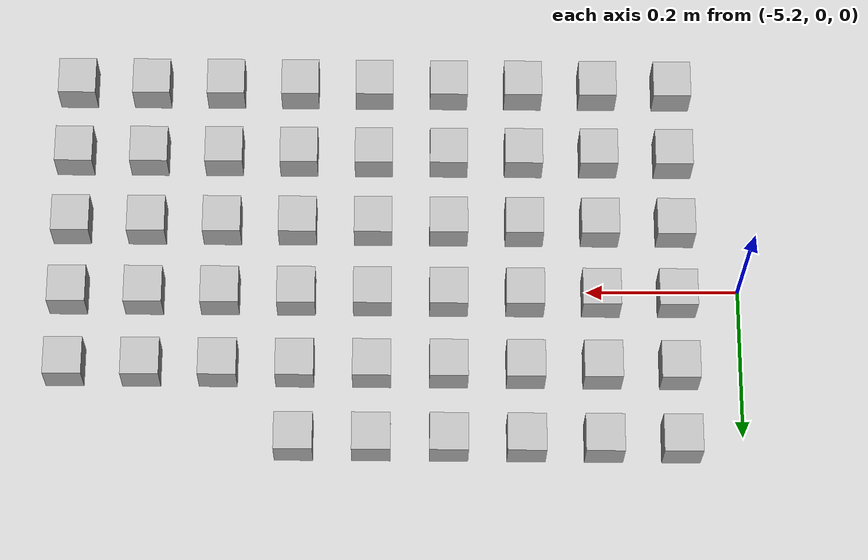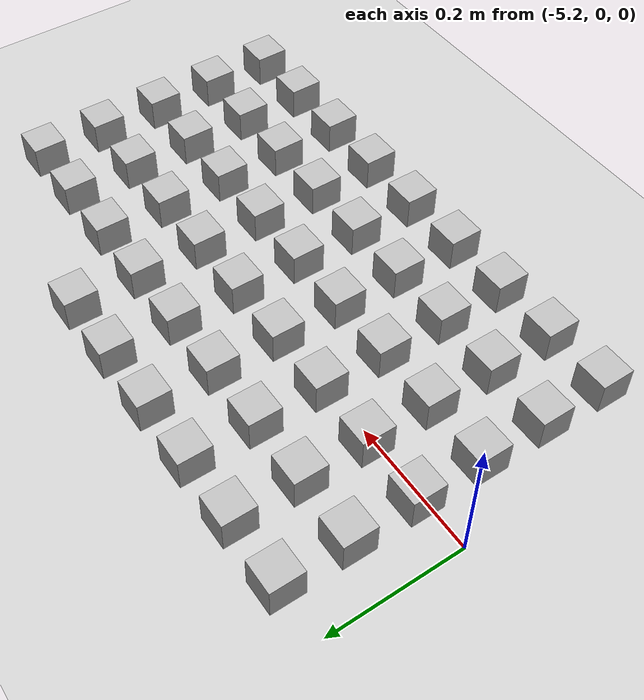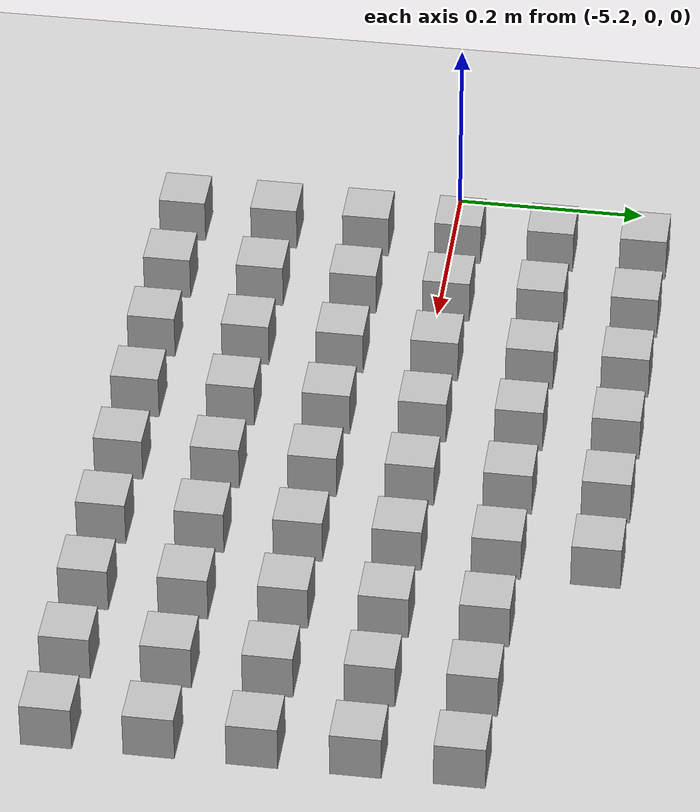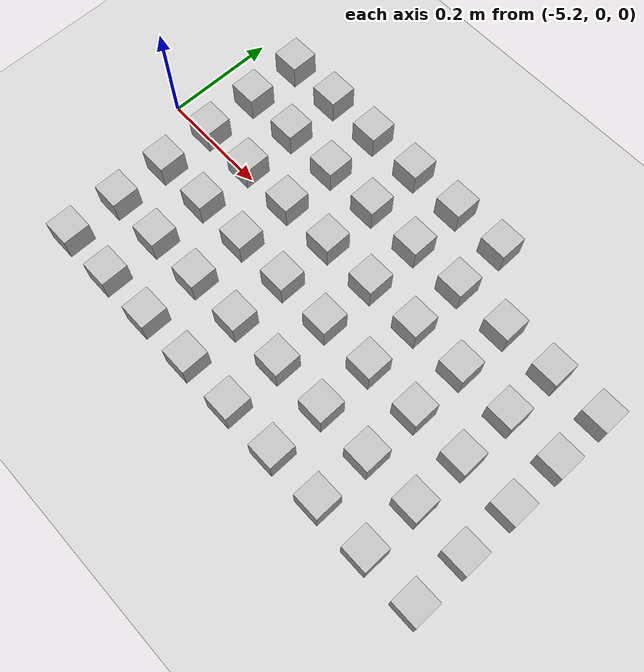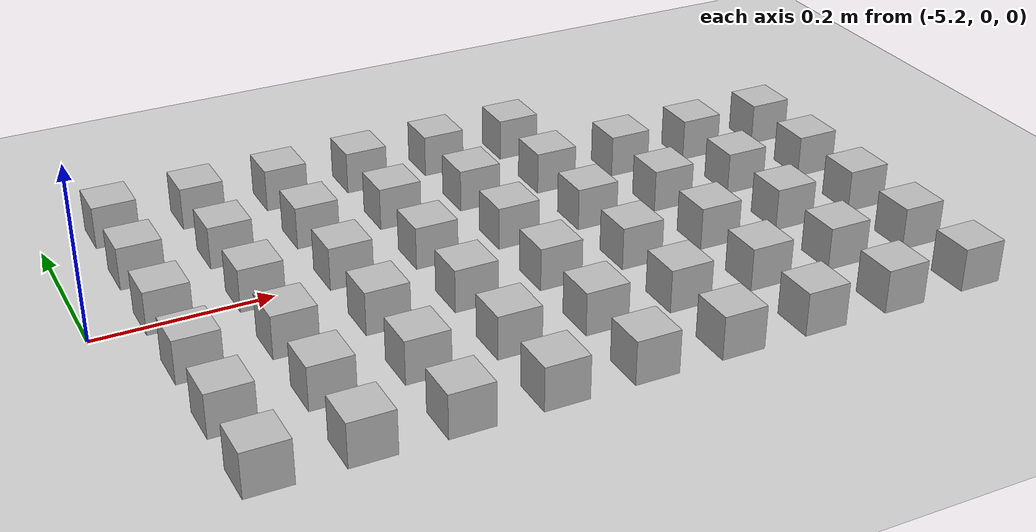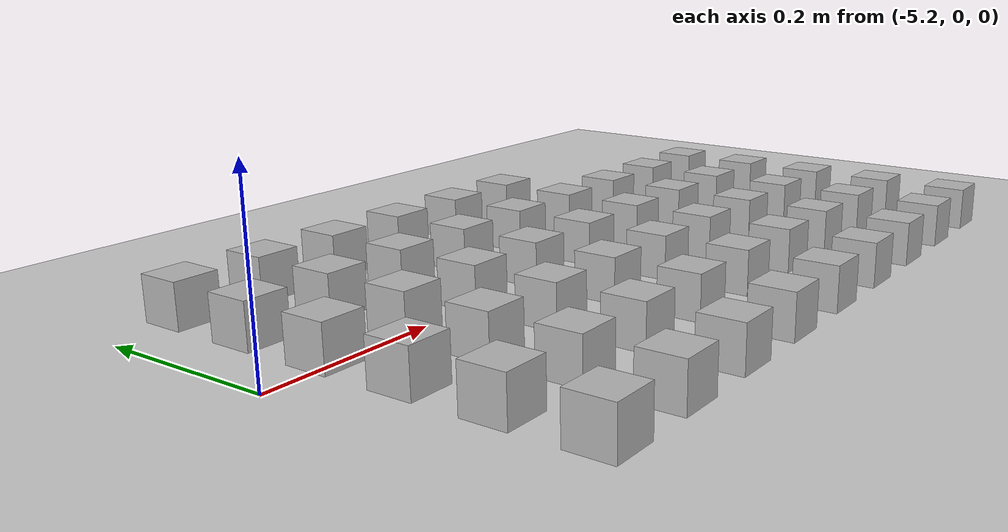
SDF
<sdf version="1.4">
 <world name="default">
  <model name="ground_plane">
   <static>1</static>
   <link name="link">
    <collision name="collision">
     <geometry><plane><normal>0 0 1</normal><size>100 100</size></plane></geometry>
     <surface><friction><ode><mu>100</mu><mu2>50</mu2></ode></friction></surface>
    </collision>
    <visual name="visual">
     <cast_shadows>0</cast_shadows>
     <geometry><plane><normal>0 0 1</normal><size>100 100</size></plane></geometry>
     <material>
      <script><uri>file://media/materials/scripts/gazebo.material</uri><name>Gazebo/Grey</name></script>
     </material>
    </visual>
    <velocity_decay><linear>0</linear><angular>0</angular></velocity_decay>
   </link>
  </model>
  <model name="at7">
   <static>0</static>
   <link name="link">
    <inertial>
     <mass>0.01</mass>
     <inertia><ixx>4e-05</ixx><ixy>0</ixy><ixz>0</ixz><iyy>4e-05</iyy><iyz>0</iyz><izz>4e-05</izz></inertia>
    </inertial>
    <visual name="visual">
     <geometry><box><size>0.05 0.05 0.05</size></box></geometry>
     <material>
      <script>
       <uri>model://at0/materials/scripts</uri>
       <uri>model://at0/materials/textures</uri>
       <name>at0/Diffuse</name>
      </script>
     </material>
    </visual>
    <collision name="collision">
     <geometry><box><size>0.05 0.05 0.05</size></box></geometry>
     <surface><friction><ode><mu>0.8</mu><mu2>0.7</mu2></ode></friction></surface>
    </collision>
    <velocity_decay><linear>0</linear><angular>0</angular></velocity_decay>
   </link>
   <pose>-5.11833 -0.290348 0.025 0 -0 0</pose>
  </model>
  <model name="at8">
   <static>0</static>
   <link name="link">
    <inertial>
     <mass>0.01</mass>
     <inertia><ixx>4e-05</ixx><ixy>0</ixy><ixz>0</ixz><iyy>4e-05</iyy><iyz>0</iyz><izz>4e-05</izz></inertia>
    </inertial>
    <visual name="visual">
     <geometry><box><size>0.05 0.05 0.05</size></box></geometry>
     <material>
      <script>
       <uri>model://at0/materials/scripts</uri>
       <uri>model://at0/materials/textures</uri>
       <name>at0/Diffuse</name>
      </script>
     </material>
    </visual>
    <collision name="collision">
     <geometry><box><size>0.05 0.05 0.05</size></box></geometry>
     <surface><friction><ode><mu>0.8</mu><mu2>0.7</mu2></ode></friction></surface>
    </collision>
    <velocity_decay><linear>0</linear><angular>0</angular></velocity_decay>
   </link>
   <pose>-5.01833 -0.290348 0.025 0 -0 0</pose>
  </model>
  <model name="at9">
   <static>0</static>
   <link name="link">
    <inertial>
     <mass>0.01</mass>
     <inertia><ixx>4e-05</ixx><ixy>0</ixy><ixz>0</ixz><iyy>4e-05</iyy><iyz>0</iyz><izz>4e-05</izz></inertia>
    </inertial>
    <visual name="visual">
     <geometry><box><size>0.05 0.05 0.05</size></box></geometry>
     <material>
      <script>
       <uri>model://at0/materials/scripts</uri>
       <uri>model://at0/materials/textures</uri>
       <name>at0/Diffuse</name>
      </script>
     </material>
    </visual>
    <collision name="collision">
     <geometry><box><size>0.05 0.05 0.05</size></box></geometry>
     <surface><friction><ode><mu>0.8</mu><mu2>0.7</mu2></ode></friction></surface>
    </collision>
    <velocity_decay><linear>0</linear><angular>0</angular></velocity_decay>
   </link>
   <pose>-4.91833 -0.290348 0.025 0 -0 0</pose>
  </model>
  <model name="at10">
   <static>0</static>
   <link name="link">
    <inertial>
     <mass>0.01</mass>
     <inertia><ixx>4e-05</ixx><ixy>0</ixy><ixz>0</ixz><iyy>4e-05</iyy><iyz>0</iyz><izz>4e-05</izz></inertia>
    </inertial>
    <visual name="visual">
     <geometry><box><size>0.05 0.05 0.05</size></box></geometry>
     <material>
      <script>
       <uri>model://at0/materials/scripts</uri>
       <uri>model://at0/materials/textures</uri>
       <name>at0/Diffuse</name>
      </script>
     </material>
    </visual>
    <collision name="collision">
     <geometry><box><size>0.05 0.05 0.05</size></box></geometry>
     <surface><friction><ode><mu>0.8</mu><mu2>0.7</mu2></ode></friction></surface>
    </collision>
    <velocity_decay><linear>0</linear><angular>0</angular></velocity_decay>
   </link>
   <pose>-4.81833 -0.290348 0.025 0 -0 0</pose>
  </model>
  <model name="at11">
   <static>0</static>
   <link name="link">
    <inertial>
     <mass>0.01</mass>
     <inertia><ixx>4e-05</ixx><ixy>0</ixy><ixz>0</ixz><iyy>4e-05</iyy><iyz>0</iyz><izz>4e-05</izz></inertia>
    </inertial>
    <visual name="visual">
     <geometry><box><size>0.05 0.05 0.05</size></box></geometry>
     <material>
      <script>
       <uri>model://at0/materials/scripts</uri>
       <uri>model://at0/materials/textures</uri>
       <name>at0/Diffuse</name>
      </script>
     </material>
    </visual>
    <collision name="collision">
     <geometry><box><size>0.05 0.05 0.05</size></box></geometry>
     <surface><friction><ode><mu>0.8</mu><mu2>0.7</mu2></ode></friction></surface>
    </collision>
    <velocity_decay><linear>0</linear><angular>0</angular></velocity_decay>
   </link>
   <pose>-4.71833 -0.290348 0.025 0 -0 0</pose>
  </model>
  <model name="at12">
   <static>0</static>
   <link name="link">
    <inertial>
     <mass>0.01</mass>
     <inertia><ixx>4e-05</ixx><ixy>0</ixy><ixz>0</ixz><iyy>4e-05</iyy><iyz>0</iyz><izz>4e-05</izz></inertia>
    </inertial>
    <visual name="visual">
     <geometry><box><size>0.05 0.05 0.05</size></box></geometry>
     <material>
      <script>
       <uri>model://at0/materials/scripts</uri>
       <uri>model://at0/materials/textures</uri>
       <name>at0/Diffuse</name>
      </script>
     </material>
    </visual>
    <collision name="collision">
     <geometry><box><size>0.05 0.05 0.05</size></box></geometry>
     <surface><friction><ode><mu>0.8</mu><mu2>0.7</mu2></ode></friction></surface>
    </collision>
    <velocity_decay><linear>0</linear><angular>0</angular></velocity_decay>
   </link>
   <pose>-4.61833 -0.290348 0.025 0 -0 0</pose>
  </model>
  <model name="at13">
   <static>0</static>
   <link name="link">
    <inertial>
     <mass>0.01</mass>
     <inertia><ixx>4e-05</ixx><ixy>0</ixy><ixz>0</ixz><iyy>4e-05</iyy><iyz>0</iyz><izz>4e-05</izz></inertia>
    </inertial>
    <visual name="visual">
     <geometry><box><size>0.05 0.05 0.05</size></box></geometry>
     <material>
      <script>
       <uri>model://at0/materials/scripts</uri>
       <uri>model://at0/materials/textures</uri>
       <name>at0/Diffuse</name>
      </script>
     </material>
    </visual>
    <collision name="collision">
     <geometry><box><size>0.05 0.05 0.05</size></box></geometry>
     <surface><friction><ode><mu>0.8</mu><mu2>0.7</mu2></ode></friction></surface>
    </collision>
    <velocity_decay><linear>0</linear><angular>0</angular></velocity_decay>
   </link>
   <pose>-4.51833 -0.290348 0.025 0 -0 0</pose>
  </model>
  <model name="at14">
   <static>0</static>
   <link name="link">
    <inertial>
     <mass>0.01</mass>
     <inertia><ixx>4e-05</ixx><ixy>0</ixy><ixz>0</ixz><iyy>4e-05</iyy><iyz>0</iyz><izz>4e-05</izz></inertia>
    </inertial>
    <visual name="visual">
     <geometry><box><size>0.05 0.05 0.05</size></box></geometry>
     <material>
      <script>
       <uri>model://at0/materials/scripts</uri>
       <uri>model://at0/materials/textures</uri>
       <name>at0/Diffuse</name>
      </script>
     </material>
    </visual>
    <collision name="collision">
     <geometry><box><size>0.05 0.05 0.05</size></box></geometry>
     <surface><friction><ode><mu>0.8</mu><mu2>0.7</mu2></ode></friction></surface>
    </collision>
    <velocity_decay><linear>0</linear><angular>0</angular></velocity_decay>
   </link>
   <pose>-4.41833 -0.290348 0.025 0 -0 0</pose>
  </model>
  <model name="at15">
   <static>0</static>
   <link name="link">
    <inertial>
     <mass>0.01</mass>
     <inertia><ixx>4e-05</ixx><ixy>0</ixy><ixz>0</ixz><iyy>4e-05</iyy><iyz>0</iyz><izz>4e-05</izz></inertia>
    </inertial>
    <visual name="visual">
     <geometry><box><size>0.05 0.05 0.05</size></box></geometry>
     <material>
      <script>
       <uri>model://at0/materials/scripts</uri>
       <uri>model://at0/materials/textures</uri>
       <name>at0/Diffuse</name>
      </script>
     </material>
    </visual>
    <collision name="collision">
     <geometry><box><size>0.05 0.05 0.05</size></box></geometry>
     <surface><friction><ode><mu>0.8</mu><mu2>0.7</mu2></ode></friction></surface>
    </collision>
    <velocity_decay><linear>0</linear><angular>0</angular></velocity_decay>
   </link>
   <pose>-4.31833 -0.290348 0.025 0 -0 0</pose>
  </model>
  <model name="at23">
   <static>0</static>
   <link name="link">
    <inertial>
     <mass>0.01</mass>
     <inertia><ixx>4e-05</ixx><ixy>0</ixy><ixz>0</ixz><iyy>4e-05</iyy><iyz>0</iyz><izz>4e-05</izz></inertia>
    </inertial>
    <visual name="visual">
     <geometry><box><size>0.05 0.05 0.05</size></box></geometry>
     <material>
      <script>
       <uri>model://at0/materials/scripts</uri>
       <uri>model://at0/materials/textures</uri>
       <name>at0/Diffuse</name>
      </script>
     </material>
    </visual>
    <collision name="collision">
     <geometry><box><size>0.05 0.05 0.05</size></box></geometry>
     <surface><friction><ode><mu>0.8</mu><mu2>0.7</mu2></ode></friction></surface>
    </collision>
    <velocity_decay><linear>0</linear><angular>0</angular></velocity_decay>
   </link>
   <pose>-5.11833 -0.190348 0.025 0 -0 0</pose>
  </model>
  <model name="at24">
   <static>0</static>
   <link name="link">
    <inertial>
     <mass>0.01</mass>
     <inertia><ixx>4e-05</ixx><ixy>0</ixy><ixz>0</ixz><iyy>4e-05</iyy><iyz>0</iyz><izz>4e-05</izz></inertia>
    </inertial>
    <visual name="visual">
     <geometry><box><size>0.05 0.05 0.05</size></box></geometry>
     <material>
      <script>
       <uri>model://at0/materials/scripts</uri>
       <uri>model://at0/materials/textures</uri>
       <name>at0/Diffuse</name>
      </script>
     </material>
    </visual>
    <collision name="collision">
     <geometry><box><size>0.05 0.05 0.05</size></box></geometry>
     <surface><friction><ode><mu>0.8</mu><mu2>0.7</mu2></ode></friction></surface>
    </collision>
    <velocity_decay><linear>0</linear><angular>0</angular></velocity_decay>
   </link>
   <pose>-5.01833 -0.190348 0.025 0 -0 0</pose>
  </model>
  <model name="at25">
   <static>0</static>
   <link name="link">
    <inertial>
     <mass>0.01</mass>
     <inertia><ixx>4e-05</ixx><ixy>0</ixy><ixz>0</ixz><iyy>4e-05</iyy><iyz>0</iyz><izz>4e-05</izz></inertia>
    </inertial>
    <visual name="visual">
     <geometry><box><size>0.05 0.05 0.05</size></box></geometry>
     <material>
      <script>
       <uri>model://at0/materials/scripts</uri>
       <uri>model://at0/materials/textures</uri>
       <name>at0/Diffuse</name>
      </script>
     </material>
    </visual>
    <collision name="collision">
     <geometry><box><size>0.05 0.05 0.05</size></box></geometry>
     <surface><friction><ode><mu>0.8</mu><mu2>0.7</mu2></ode></friction></surface>
    </collision>
    <velocity_decay><linear>0</linear><angular>0</angular></velocity_decay>
   </link>
   <pose>-4.91833 -0.190348 0.025 0 -0 0</pose>
  </model>
  <model name="at26">
   <static>0</static>
   <link name="link">
    <inertial>
     <mass>0.01</mass>
     <inertia><ixx>4e-05</ixx><ixy>0</ixy><ixz>0</ixz><iyy>4e-05</iyy><iyz>0</iyz><izz>4e-05</izz></inertia>
    </inertial>
    <visual name="visual">
     <geometry><box><size>0.05 0.05 0.05</size></box></geometry>
     <material>
      <script>
       <uri>model://at0/materials/scripts</uri>
       <uri>model://at0/materials/textures</uri>
       <name>at0/Diffuse</name>
      </script>
     </material>
    </visual>
    <collision name="collision">
     <geometry><box><size>0.05 0.05 0.05</size></box></geometry>
     <surface><friction><ode><mu>0.8</mu><mu2>0.7</mu2></ode></friction></surface>
    </collision>
    <velocity_decay><linear>0</linear><angular>0</angular></velocity_decay>
   </link>
   <pose>-4.81833 -0.190348 0.025 0 -0 0</pose>
  </model>
  <model name="at27">
   <static>0</static>
   <link name="link">
    <inertial>
     <mass>0.01</mass>
     <inertia><ixx>4e-05</ixx><ixy>0</ixy><ixz>0</ixz><iyy>4e-05</iyy><iyz>0</iyz><izz>4e-05</izz></inertia>
    </inertial>
    <visual name="visual">
     <geometry><box><size>0.05 0.05 0.05</size></box></geometry>
     <material>
      <script>
       <uri>model://at0/materials/scripts</uri>
       <uri>model://at0/materials/textures</uri>
       <name>at0/Diffuse</name>
      </script>
     </material>
    </visual>
    <collision name="collision">
     <geometry><box><size>0.05 0.05 0.05</size></box></geometry>
     <surface><friction><ode><mu>0.8</mu><mu2>0.7</mu2></ode></friction></surface>
    </collision>
    <velocity_decay><linear>0</linear><angular>0</angular></velocity_decay>
   </link>
   <pose>-4.71833 -0.190348 0.025 0 -0 0</pose>
  </model>
  <model name="at28">
   <static>0</static>
   <link name="link">
    <inertial>
     <mass>0.01</mass>
     <inertia><ixx>4e-05</ixx><ixy>0</ixy><ixz>0</ixz><iyy>4e-05</iyy><iyz>0</iyz><izz>4e-05</izz></inertia>
    </inertial>
    <visual name="visual">
     <geometry><box><size>0.05 0.05 0.05</size></box></geometry>
     <material>
      <script>
       <uri>model://at0/materials/scripts</uri>
       <uri>model://at0/materials/textures</uri>
       <name>at0/Diffuse</name>
      </script>
     </material>
    </visual>
    <collision name="collision">
     <geometry><box><size>0.05 0.05 0.05</size></box></geometry>
     <surface><friction><ode><mu>0.8</mu><mu2>0.7</mu2></ode></friction></surface>
    </collision>
    <velocity_decay><linear>0</linear><angular>0</angular></velocity_decay>
   </link>
   <pose>-4.61833 -0.190348 0.025 0 -0 0</pose>
  </model>
  <model name="at29">
   <static>0</static>
   <link name="link">
    <inertial>
     <mass>0.01</mass>
     <inertia><ixx>4e-05</ixx><ixy>0</ixy><ixz>0</ixz><iyy>4e-05</iyy><iyz>0</iyz><izz>4e-05</izz></inertia>
    </inertial>
    <visual name="visual">
     <geometry><box><size>0.05 0.05 0.05</size></box></geometry>
     <material>
      <script>
       <uri>model://at0/materials/scripts</uri>
       <uri>model://at0/materials/textures</uri>
       <name>at0/Diffuse</name>
      </script>
     </material>
    </visual>
    <collision name="collision">
     <geometry><box><size>0.05 0.05 0.05</size></box></geometry>
     <surface><friction><ode><mu>0.8</mu><mu2>0.7</mu2></ode></friction></surface>
    </collision>
    <velocity_decay><linear>0</linear><angular>0</angular></velocity_decay>
   </link>
   <pose>-4.51833 -0.190348 0.025 0 -0 0</pose>
  </model>
  <model name="at30">
   <static>0</static>
   <link name="link">
    <inertial>
     <mass>0.01</mass>
     <inertia><ixx>4e-05</ixx><ixy>0</ixy><ixz>0</ixz><iyy>4e-05</iyy><iyz>0</iyz><izz>4e-05</izz></inertia>
    </inertial>
    <visual name="visual">
     <geometry><box><size>0.05 0.05 0.05</size></box></geometry>
     <material>
      <script>
       <uri>model://at0/materials/scripts</uri>
       <uri>model://at0/materials/textures</uri>
       <name>at0/Diffuse</name>
      </script>
     </material>
    </visual>
    <collision name="collision">
     <geometry><box><size>0.05 0.05 0.05</size></box></geometry>
     <surface><friction><ode><mu>0.8</mu><mu2>0.7</mu2></ode></friction></surface>
    </collision>
    <velocity_decay><linear>0</linear><angular>0</angular></velocity_decay>
   </link>
   <pose>-4.41833 -0.190348 0.025 0 -0 0</pose>
  </model>
  <model name="at31">
   <static>0</static>
   <link name="link">
    <inertial>
     <mass>0.01</mass>
     <inertia><ixx>4e-05</ixx><ixy>0</ixy><ixz>0</ixz><iyy>4e-05</iyy><iyz>0</iyz><izz>4e-05</izz></inertia>
    </inertial>
    <visual name="visual">
     <geometry><box><size>0.05 0.05 0.05</size></box></geometry>
     <material>
      <script>
       <uri>model://at0/materials/scripts</uri>
       <uri>model://at0/materials/textures</uri>
       <name>at0/Diffuse</name>
      </script>
     </material>
    </visual>
    <collision name="collision">
     <geometry><box><size>0.05 0.05 0.05</size></box></geometry>
     <surface><friction><ode><mu>0.8</mu><mu2>0.7</mu2></ode></friction></surface>
    </collision>
    <velocity_decay><linear>0</linear><angular>0</angular></velocity_decay>
   </link>
   <pose>-4.31833 -0.190348 0.025 0 -0 0</pose>
  </model>
  <model name="at39">
   <static>0</static>
   <link name="link">
    <inertial>
     <mass>0.01</mass>
     <inertia><ixx>4e-05</ixx><ixy>0</ixy><ixz>0</ixz><iyy>4e-05</iyy><iyz>0</iyz><izz>4e-05</izz></inertia>
    </inertial>
    <visual name="visual">
     <geometry><box><size>0.05 0.05 0.05</size></box></geometry>
     <material>
      <script>
       <uri>model://at0/materials/scripts</uri>
       <uri>model://at0/materials/textures</uri>
       <name>at0/Diffuse</name>
      </script>
     </material>
    </visual>
    <collision name="collision">
     <geometry><box><size>0.05 0.05 0.05</size></box></geometry>
     <surface><friction><ode><mu>0.8</mu><mu2>0.7</mu2></ode></friction></surface>
    </collision>
    <velocity_decay><linear>0</linear><angular>0</angular></velocity_decay>
   </link>
   <pose>-5.11833 -0.090348 0.025 0 -0 0</pose>
  </model>
  <model name="at40">
   <static>0</static>
   <link name="link">
    <inertial>
     <mass>0.01</mass>
     <inertia><ixx>4e-05</ixx><ixy>0</ixy><ixz>0</ixz><iyy>4e-05</iyy><iyz>0</iyz><izz>4e-05</izz></inertia>
    </inertial>
    <visual name="visual">
     <geometry><box><size>0.05 0.05 0.05</size></box></geometry>
     <material>
      <script>
       <uri>model://at0/materials/scripts</uri>
       <uri>model://at0/materials/textures</uri>
       <name>at0/Diffuse</name>
      </script>
     </material>
    </visual>
    <collision name="collision">
     <geometry><box><size>0.05 0.05 0.05</size></box></geometry>
     <surface><friction><ode><mu>0.8</mu><mu2>0.7</mu2></ode></friction></surface>
    </collision>
    <velocity_decay><linear>0</linear><angular>0</angular></velocity_decay>
   </link>
   <pose>-5.01833 -0.090348 0.025 0 -0 0</pose>
  </model>
  <model name="at41">
   <static>0</static>
   <link name="link">
    <inertial>
     <mass>0.01</mass>
     <inertia><ixx>4e-05</ixx><ixy>0</ixy><ixz>0</ixz><iyy>4e-05</iyy><iyz>0</iyz><izz>4e-05</izz></inertia>
    </inertial>
    <visual name="visual">
     <geometry><box><size>0.05 0.05 0.05</size></box></geometry>
     <material>
      <script>
       <uri>model://at0/materials/scripts</uri>
       <uri>model://at0/materials/textures</uri>
       <name>at0/Diffuse</name>
      </script>
     </material>
    </visual>
    <collision name="collision">
     <geometry><box><size>0.05 0.05 0.05</size></box></geometry>
     <surface><friction><ode><mu>0.8</mu><mu2>0.7</mu2></ode></friction></surface>
    </collision>
    <velocity_decay><linear>0</linear><angular>0</angular></velocity_decay>
   </link>
   <pose>-4.91833 -0.090348 0.025 0 -0 0</pose>
  </model>
  <model name="at42">
   <static>0</static>
   <link name="link">
    <inertial>
     <mass>0.01</mass>
     <inertia><ixx>4e-05</ixx><ixy>0</ixy><ixz>0</ixz><iyy>4e-05</iyy><iyz>0</iyz><izz>4e-05</izz></inertia>
    </inertial>
    <visual name="visual">
     <geometry><box><size>0.05 0.05 0.05</size></box></geometry>
     <material>
      <script>
       <uri>model://at0/materials/scripts</uri>
       <uri>model://at0/materials/textures</uri>
       <name>at0/Diffuse</name>
      </script>
     </material>
    </visual>
    <collision name="collision">
     <geometry><box><size>0.05 0.05 0.05</size></box></geometry>
     <surface><friction><ode><mu>0.8</mu><mu2>0.7</mu2></ode></friction></surface>
    </collision>
    <velocity_decay><linear>0</linear><angular>0</angular></velocity_decay>
   </link>
   <pose>-4.81833 -0.090348 0.025 0 -0 0</pose>
  </model>
  <model name="at43">
   <static>0</static>
   <link name="link">
    <inertial>
     <mass>0.01</mass>
     <inertia><ixx>4e-05</ixx><ixy>0</ixy><ixz>0</ixz><iyy>4e-05</iyy><iyz>0</iyz><izz>4e-05</izz></inertia>
    </inertial>
    <visual name="visual">
     <geometry><box><size>0.05 0.05 0.05</size></box></geometry>
     <material>
      <script>
       <uri>model://at0/materials/scripts</uri>
       <uri>model://at0/materials/textures</uri>
       <name>at0/Diffuse</name>
      </script>
     </material>
    </visual>
    <collision name="collision">
     <geometry><box><size>0.05 0.05 0.05</size></box></geometry>
     <surface><friction><ode><mu>0.8</mu><mu2>0.7</mu2></ode></friction></surface>
    </collision>
    <velocity_decay><linear>0</linear><angular>0</angular></velocity_decay>
   </link>
   <pose>-4.71833 -0.090348 0.025 0 -0 0</pose>
  </model>
  <model name="at44">
   <static>0</static>
   <link name="link">
    <inertial>
     <mass>0.01</mass>
     <inertia><ixx>4e-05</ixx><ixy>0</ixy><ixz>0</ixz><iyy>4e-05</iyy><iyz>0</iyz><izz>4e-05</izz></inertia>
    </inertial>
    <visual name="visual">
     <geometry><box><size>0.05 0.05 0.05</size></box></geometry>
     <material>
      <script>
       <uri>model://at0/materials/scripts</uri>
       <uri>model://at0/materials/textures</uri>
       <name>at0/Diffuse</name>
      </script>
     </material>
    </visual>
    <collision name="collision">
     <geometry><box><size>0.05 0.05 0.05</size></box></geometry>
     <surface><friction><ode><mu>0.8</mu><mu2>0.7</mu2></ode></friction></surface>
    </collision>
    <velocity_decay><linear>0</linear><angular>0</angular></velocity_decay>
   </link>
   <pose>-4.61833 -0.090348 0.025 0 -0 0</pose>
  </model>
  <model name="at45">
   <static>0</static>
   <link name="link">
    <inertial>
     <mass>0.01</mass>
     <inertia><ixx>4e-05</ixx><ixy>0</ixy><ixz>0</ixz><iyy>4e-05</iyy><iyz>0</iyz><izz>4e-05</izz></inertia>
    </inertial>
    <visual name="visual">
     <geometry><box><size>0.05 0.05 0.05</size></box></geometry>
     <material>
      <script>
       <uri>model://at0/materials/scripts</uri>
       <uri>model://at0/materials/textures</uri>
       <name>at0/Diffuse</name>
      </script>
     </material>
    </visual>
    <collision name="collision">
     <geometry><box><size>0.05 0.05 0.05</size></box></geometry>
     <surface><friction><ode><mu>0.8</mu><mu2>0.7</mu2></ode></friction></surface>
    </collision>
    <velocity_decay><linear>0</linear><angular>0</angular></velocity_decay>
   </link>
   <pose>-4.51833 -0.090348 0.025 0 -0 0</pose>
  </model>
  <model name="at46">
   <static>0</static>
   <link name="link">
    <inertial>
     <mass>0.01</mass>
     <inertia><ixx>4e-05</ixx><ixy>0</ixy><ixz>0</ixz><iyy>4e-05</iyy><iyz>0</iyz><izz>4e-05</izz></inertia>
    </inertial>
    <visual name="visual">
     <geometry><box><size>0.05 0.05 0.05</size></box></geometry>
     <material>
      <script>
       <uri>model://at0/materials/scripts</uri>
       <uri>model://at0/materials/textures</uri>
       <name>at0/Diffuse</name>
      </script>
     </material>
    </visual>
    <collision name="collision">
     <geometry><box><size>0.05 0.05 0.05</size></box></geometry>
     <surface><friction><ode><mu>0.8</mu><mu2>0.7</mu2></ode></friction></surface>
    </collision>
    <velocity_decay><linear>0</linear><angular>0</angular></velocity_decay>
   </link>
   <pose>-4.41833 -0.090348 0.025 0 -0 0</pose>
  </model>
  <model name="at47">
   <static>0</static>
   <link name="link">
    <inertial>
     <mass>0.01</mass>
     <inertia><ixx>4e-05</ixx><ixy>0</ixy><ixz>0</ixz><iyy>4e-05</iyy><iyz>0</iyz><izz>4e-05</izz></inertia>
    </inertial>
    <visual name="visual">
     <geometry><box><size>0.05 0.05 0.05</size></box></geometry>
     <material>
      <script>
       <uri>model://at0/materials/scripts</uri>
       <uri>model://at0/materials/textures</uri>
       <name>at0/Diffuse</name>
      </script>
     </material>
    </visual>
    <collision name="collision">
     <geometry><box><size>0.05 0.05 0.05</size></box></geometry>
     <surface><friction><ode><mu>0.8</mu><mu2>0.7</mu2></ode></friction></surface>
    </collision>
    <velocity_decay><linear>0</linear><angular>0</angular></velocity_decay>
   </link>
   <pose>-4.31833 -0.090348 0.025 0 -0 0</pose>
  </model>
  <model name="at55">
   <static>0</static>
   <link name="link">
    <inertial>
     <mass>0.01</mass>
     <inertia><ixx>4e-05</ixx><ixy>0</ixy><ixz>0</ixz><iyy>4e-05</iyy><iyz>0</iyz><izz>4e-05</izz></inertia>
    </inertial>
    <visual name="visual">
     <geometry><box><size>0.05 0.05 0.05</size></box></geometry>
     <material>
      <script>
       <uri>model://at0/materials/scripts</uri>
       <uri>model://at0/materials/textures</uri>
       <name>at0/Diffuse</name>
      </script>
     </material>
    </visual>
    <collision name="collision">
     <geometry><box><size>0.05 0.05 0.05</size></box></geometry>
     <surface><friction><ode><mu>0.8</mu><mu2>0.7</mu2></ode></friction></surface>
    </collision>
    <velocity_decay><linear>0</linear><angular>0</angular></velocity_decay>
   </link>
   <pose>-5.11833 0.009652 0.025 0 -0 0</pose>
  </model>
  <model name="at56">
   <static>0</static>
   <link name="link">
    <inertial>
     <mass>0.01</mass>
     <inertia><ixx>4e-05</ixx><ixy>0</ixy><ixz>0</ixz><iyy>4e-05</iyy><iyz>0</iyz><izz>4e-05</izz></inertia>
    </inertial>
    <visual name="visual">
     <geometry><box><size>0.05 0.05 0.05</size></box></geometry>
     <material>
      <script>
       <uri>model://at0/materials/scripts</uri>
       <uri>model://at0/materials/textures</uri>
       <name>at0/Diffuse</name>
      </script>
     </material>
    </visual>
    <collision name="collision">
     <geometry><box><size>0.05 0.05 0.05</size></box></geometry>
     <surface><friction><ode><mu>0.8</mu><mu2>0.7</mu2></ode></friction></surface>
    </collision>
    <velocity_decay><linear>0</linear><angular>0</angular></velocity_decay>
   </link>
   <pose>-5.01833 0.009652 0.025 0 -0 0</pose>
  </model>
  <model name="at57">
   <static>0</static>
   <link name="link">
    <inertial>
     <mass>0.01</mass>
     <inertia><ixx>4e-05</ixx><ixy>0</ixy><ixz>0</ixz><iyy>4e-05</iyy><iyz>0</iyz><izz>4e-05</izz></inertia>
    </inertial>
    <visual name="visual">
     <geometry><box><size>0.05 0.05 0.05</size></box></geometry>
     <material>
      <script>
       <uri>model://at0/materials/scripts</uri>
       <uri>model://at0/materials/textures</uri>
       <name>at0/Diffuse</name>
      </script>
     </material>
    </visual>
    <collision name="collision">
     <geometry><box><size>0.05 0.05 0.05</size></box></geometry>
     <surface><friction><ode><mu>0.8</mu><mu2>0.7</mu2></ode></friction></surface>
    </collision>
    <velocity_decay><linear>0</linear><angular>0</angular></velocity_decay>
   </link>
   <pose>-4.91833 0.009652 0.025 0 -0 0</pose>
  </model>
  <model name="at58">
   <static>0</static>
   <link name="link">
    <inertial>
     <mass>0.01</mass>
     <inertia><ixx>4e-05</ixx><ixy>0</ixy><ixz>0</ixz><iyy>4e-05</iyy><iyz>0</iyz><izz>4e-05</izz></inertia>
    </inertial>
    <visual name="visual">
     <geometry><box><size>0.05 0.05 0.05</size></box></geometry>
     <material>
      <script>
       <uri>model://at0/materials/scripts</uri>
       <uri>model://at0/materials/textures</uri>
       <name>at0/Diffuse</name>
      </script>
     </material>
    </visual>
    <collision name="collision">
     <geometry><box><size>0.05 0.05 0.05</size></box></geometry>
     <surface><friction><ode><mu>0.8</mu><mu2>0.7</mu2></ode></friction></surface>
    </collision>
    <velocity_decay><linear>0</linear><angular>0</angular></velocity_decay>
   </link>
   <pose>-4.81833 0.009652 0.025 0 -0 0</pose>
  </model>
  <model name="at59">
   <static>0</static>
   <link name="link">
    <inertial>
     <mass>0.01</mass>
     <inertia><ixx>4e-05</ixx><ixy>0</ixy><ixz>0</ixz><iyy>4e-05</iyy><iyz>0</iyz><izz>4e-05</izz></inertia>
    </inertial>
    <visual name="visual">
     <geometry><box><size>0.05 0.05 0.05</size></box></geometry>
     <material>
      <script>
       <uri>model://at0/materials/scripts</uri>
       <uri>model://at0/materials/textures</uri>
       <name>at0/Diffuse</name>
      </script>
     </material>
    </visual>
    <collision name="collision">
     <geometry><box><size>0.05 0.05 0.05</size></box></geometry>
     <surface><friction><ode><mu>0.8</mu><mu2>0.7</mu2></ode></friction></surface>
    </collision>
    <velocity_decay><linear>0</linear><angular>0</angular></velocity_decay>
   </link>
   <pose>-4.71833 0.009652 0.025 0 -0 0</pose>
  </model>
  <model name="at60">
   <static>0</static>
   <link name="link">
    <inertial>
     <mass>0.01</mass>
     <inertia><ixx>4e-05</ixx><ixy>0</ixy><ixz>0</ixz><iyy>4e-05</iyy><iyz>0</iyz><izz>4e-05</izz></inertia>
    </inertial>
    <visual name="visual">
     <geometry><box><size>0.05 0.05 0.05</size></box></geometry>
     <material>
      <script>
       <uri>model://at0/materials/scripts</uri>
       <uri>model://at0/materials/textures</uri>
       <name>at0/Diffuse</name>
      </script>
     </material>
    </visual>
    <collision name="collision">
     <geometry><box><size>0.05 0.05 0.05</size></box></geometry>
     <surface><friction><ode><mu>0.8</mu><mu2>0.7</mu2></ode></friction></surface>
    </collision>
    <velocity_decay><linear>0</linear><angular>0</angular></velocity_decay>
   </link>
   <pose>-4.61833 0.009652 0.025 0 -0 0</pose>
  </model>
  <model name="at61">
   <static>0</static>
   <link name="link">
    <inertial>
     <mass>0.01</mass>
     <inertia><ixx>4e-05</ixx><ixy>0</ixy><ixz>0</ixz><iyy>4e-05</iyy><iyz>0</iyz><izz>4e-05</izz></inertia>
    </inertial>
    <visual name="visual">
     <geometry><box><size>0.05 0.05 0.05</size></box></geometry>
     <material>
      <script>
       <uri>model://at0/materials/scripts</uri>
       <uri>model://at0/materials/textures</uri>
       <name>at0/Diffuse</name>
      </script>
     </material>
    </visual>
    <collision name="collision">
     <geometry><box><size>0.05 0.05 0.05</size></box></geometry>
     <surface><friction><ode><mu>0.8</mu><mu2>0.7</mu2></ode></friction></surface>
    </collision>
    <velocity_decay><linear>0</linear><angular>0</angular></velocity_decay>
   </link>
   <pose>-4.51833 0.009652 0.025 0 -0 0</pose>
  </model>
  <model name="at62">
   <static>0</static>
   <link name="link">
    <inertial>
     <mass>0.01</mass>
     <inertia><ixx>4e-05</ixx><ixy>0</ixy><ixz>0</ixz><iyy>4e-05</iyy><iyz>0</iyz><izz>4e-05</izz></inertia>
    </inertial>
    <visual name="visual">
     <geometry><box><size>0.05 0.05 0.05</size></box></geometry>
     <material>
      <script>
       <uri>model://at0/materials/scripts</uri>
       <uri>model://at0/materials/textures</uri>
       <name>at0/Diffuse</name>
      </script>
     </material>
    </visual>
    <collision name="collision">
     <geometry><box><size>0.05 0.05 0.05</size></box></geometry>
     <surface><friction><ode><mu>0.8</mu><mu2>0.7</mu2></ode></friction></surface>
    </collision>
    <velocity_decay><linear>0</linear><angular>0</angular></velocity_decay>
   </link>
   <pose>-4.41833 0.009652 0.025 0 -0 0</pose>
  </model>
  <model name="at63">
   <static>0</static>
   <link name="link">
    <inertial>
     <mass>0.01</mass>
     <inertia><ixx>4e-05</ixx><ixy>0</ixy><ixz>0</ixz><iyy>4e-05</iyy><iyz>0</iyz><izz>4e-05</izz></inertia>
    </inertial>
    <visual name="visual">
     <geometry><box><size>0.05 0.05 0.05</size></box></geometry>
     <material>
      <script>
       <uri>model://at0/materials/scripts</uri>
       <uri>model://at0/materials/textures</uri>
       <name>at0/Diffuse</name>
      </script>
     </material>
    </visual>
    <collision name="collision">
     <geometry><box><size>0.05 0.05 0.05</size></box></geometry>
     <surface><friction><ode><mu>0.8</mu><mu2>0.7</mu2></ode></friction></surface>
    </collision>
    <velocity_decay><linear>0</linear><angular>0</angular></velocity_decay>
   </link>
   <pose>-4.31833 0.009652 0.025 0 -0 0</pose>
  </model>
  <model name="at71">
   <static>0</static>
   <link name="link">
    <inertial>
     <mass>0.01</mass>
     <inertia><ixx>4e-05</ixx><ixy>0</ixy><ixz>0</ixz><iyy>4e-05</iyy><iyz>0</iyz><izz>4e-05</izz></inertia>
    </inertial>
    <visual name="visual">
     <geometry><box><size>0.05 0.05 0.05</size></box></geometry>
     <material>
      <script>
       <uri>model://at0/materials/scripts</uri>
       <uri>model://at0/materials/textures</uri>
       <name>at0/Diffuse</name>
      </script>
     </material>
    </visual>
    <collision name="collision">
     <geometry><box><size>0.05 0.05 0.05</size></box></geometry>
     <surface><friction><ode><mu>0.8</mu><mu2>0.7</mu2></ode></friction></surface>
    </collision>
    <velocity_decay><linear>0</linear><angular>0</angular></velocity_decay>
   </link>
   <pose>-5.11833 0.109652 0.025 0 -0 0</pose>
  </model>
  <model name="at72">
   <static>0</static>
   <link name="link">
    <inertial>
     <mass>0.01</mass>
     <inertia><ixx>4e-05</ixx><ixy>0</ixy><ixz>0</ixz><iyy>4e-05</iyy><iyz>0</iyz><izz>4e-05</izz></inertia>
    </inertial>
    <visual name="visual">
     <geometry><box><size>0.05 0.05 0.05</size></box></geometry>
     <material>
      <script>
       <uri>model://at0/materials/scripts</uri>
       <uri>model://at0/materials/textures</uri>
       <name>at0/Diffuse</name>
      </script>
     </material>
    </visual>
    <collision name="collision">
     <geometry><box><size>0.05 0.05 0.05</size></box></geometry>
     <surface><friction><ode><mu>0.8</mu><mu2>0.7</mu2></ode></friction></surface>
    </collision>
    <velocity_decay><linear>0</linear><angular>0</angular></velocity_decay>
   </link>
   <pose>-5.01833 0.109652 0.025 0 -0 0</pose>
  </model>
  <model name="at73">
   <static>0</static>
   <link name="link">
    <inertial>
     <mass>0.01</mass>
     <inertia><ixx>4e-05</ixx><ixy>0</ixy><ixz>0</ixz><iyy>4e-05</iyy><iyz>0</iyz><izz>4e-05</izz></inertia>
    </inertial>
    <visual name="visual">
     <geometry><box><size>0.05 0.05 0.05</size></box></geometry>
     <material>
      <script>
       <uri>model://at0/materials/scripts</uri>
       <uri>model://at0/materials/textures</uri>
       <name>at0/Diffuse</name>
      </script>
     </material>
    </visual>
    <collision name="collision">
     <geometry><box><size>0.05 0.05 0.05</size></box></geometry>
     <surface><friction><ode><mu>0.8</mu><mu2>0.7</mu2></ode></friction></surface>
    </collision>
    <velocity_decay><linear>0</linear><angular>0</angular></velocity_decay>
   </link>
   <pose>-4.91833 0.109652 0.025 0 -0 0</pose>
  </model>
  <model name="at74">
   <static>0</static>
   <link name="link">
    <inertial>
     <mass>0.01</mass>
     <inertia><ixx>4e-05</ixx><ixy>0</ixy><ixz>0</ixz><iyy>4e-05</iyy><iyz>0</iyz><izz>4e-05</izz></inertia>
    </inertial>
    <visual name="visual">
     <geometry><box><size>0.05 0.05 0.05</size></box></geometry>
     <material>
      <script>
       <uri>model://at0/materials/scripts</uri>
       <uri>model://at0/materials/textures</uri>
       <name>at0/Diffuse</name>
      </script>
     </material>
    </visual>
    <collision name="collision">
     <geometry><box><size>0.05 0.05 0.05</size></box></geometry>
     <surface><friction><ode><mu>0.8</mu><mu2>0.7</mu2></ode></friction></surface>
    </collision>
    <velocity_decay><linear>0</linear><angular>0</angular></velocity_decay>
   </link>
   <pose>-4.81833 0.109652 0.025 0 -0 0</pose>
  </model>
  <model name="at75">
   <static>0</static>
   <link name="link">
    <inertial>
     <mass>0.01</mass>
     <inertia><ixx>4e-05</ixx><ixy>0</ixy><ixz>0</ixz><iyy>4e-05</iyy><iyz>0</iyz><izz>4e-05</izz></inertia>
    </inertial>
    <visual name="visual">
     <geometry><box><size>0.05 0.05 0.05</size></box></geometry>
     <material>
      <script>
       <uri>model://at0/materials/scripts</uri>
       <uri>model://at0/materials/textures</uri>
       <name>at0/Diffuse</name>
      </script>
     </material>
    </visual>
    <collision name="collision">
     <geometry><box><size>0.05 0.05 0.05</size></box></geometry>
     <surface><friction><ode><mu>0.8</mu><mu2>0.7</mu2></ode></friction></surface>
    </collision>
    <velocity_decay><linear>0</linear><angular>0</angular></velocity_decay>
   </link>
   <pose>-4.71833 0.109652 0.025 0 -0 0</pose>
  </model>
  <model name="at76">
   <static>0</static>
   <link name="link">
    <inertial>
     <mass>0.01</mass>
     <inertia><ixx>4e-05</ixx><ixy>0</ixy><ixz>0</ixz><iyy>4e-05</iyy><iyz>0</iyz><izz>4e-05</izz></inertia>
    </inertial>
    <visual name="visual">
     <geometry><box><size>0.05 0.05 0.05</size></box></geometry>
     <material>
      <script>
       <uri>model://at0/materials/scripts</uri>
       <uri>model://at0/materials/textures</uri>
       <name>at0/Diffuse</name>
      </script>
     </material>
    </visual>
    <collision name="collision">
     <geometry><box><size>0.05 0.05 0.05</size></box></geometry>
     <surface><friction><ode><mu>0.8</mu><mu2>0.7</mu2></ode></friction></surface>
    </collision>
    <velocity_decay><linear>0</linear><angular>0</angular></velocity_decay>
   </link>
   <pose>-4.61833 0.109652 0.025 0 -0 0</pose>
  </model>
  <model name="at77">
   <static>0</static>
   <link name="link">
    <inertial>
     <mass>0.01</mass>
     <inertia><ixx>4e-05</ixx><ixy>0</ixy><ixz>0</ixz><iyy>4e-05</iyy><iyz>0</iyz><izz>4e-05</izz></inertia>
    </inertial>
    <visual name="visual">
     <geometry><box><size>0.05 0.05 0.05</size></box></geometry>
     <material>
      <script>
       <uri>model://at0/materials/scripts</uri>
       <uri>model://at0/materials/textures</uri>
       <name>at0/Diffuse</name>
      </script>
     </material>
    </visual>
    <collision name="collision">
     <geometry><box><size>0.05 0.05 0.05</size></box></geometry>
     <surface><friction><ode><mu>0.8</mu><mu2>0.7</mu2></ode></friction></surface>
    </collision>
    <velocity_decay><linear>0</linear><angular>0</angular></velocity_decay>
   </link>
   <pose>-4.51833 0.109652 0.025 0 -0 0</pose>
  </model>
  <model name="at78">
   <static>0</static>
   <link name="link">
    <inertial>
     <mass>0.01</mass>
     <inertia><ixx>4e-05</ixx><ixy>0</ixy><ixz>0</ixz><iyy>4e-05</iyy><iyz>0</iyz><izz>4e-05</izz></inertia>
    </inertial>
    <visual name="visual">
     <geometry><box><size>0.05 0.05 0.05</size></box></geometry>
     <material>
      <script>
       <uri>model://at0/materials/scripts</uri>
       <uri>model://at0/materials/textures</uri>
       <name>at0/Diffuse</name>
      </script>
     </material>
    </visual>
    <collision name="collision">
     <geometry><box><size>0.05 0.05 0.05</size></box></geometry>
     <surface><friction><ode><mu>0.8</mu><mu2>0.7</mu2></ode></friction></surface>
    </collision>
    <velocity_decay><linear>0</linear><angular>0</angular></velocity_decay>
   </link>
   <pose>-4.41833 0.109652 0.025 0 -0 0</pose>
  </model>
  <model name="at79">
   <static>0</static>
   <link name="link">
    <inertial>
     <mass>0.01</mass>
     <inertia><ixx>4e-05</ixx><ixy>0</ixy><ixz>0</ixz><iyy>4e-05</iyy><iyz>0</iyz><izz>4e-05</izz></inertia>
    </inertial>
    <visual name="visual">
     <geometry><box><size>0.05 0.05 0.05</size></box></geometry>
     <material>
      <script>
       <uri>model://at0/materials/scripts</uri>
       <uri>model://at0/materials/textures</uri>
       <name>at0/Diffuse</name>
      </script>
     </material>
    </visual>
    <collision name="collision">
     <geometry><box><size>0.05 0.05 0.05</size></box></geometry>
     <surface><friction><ode><mu>0.8</mu><mu2>0.7</mu2></ode></friction></surface>
    </collision>
    <velocity_decay><linear>0</linear><angular>0</angular></velocity_decay>
   </link>
   <pose>-4.31833 0.109652 0.025 0 -0 0</pose>
  </model>
  <model name="at87">
   <static>0</static>
   <link name="link">
    <inertial>
     <mass>0.01</mass>
     <inertia><ixx>4e-05</ixx><ixy>0</ixy><ixz>0</ixz><iyy>4e-05</iyy><iyz>0</iyz><izz>4e-05</izz></inertia>
    </inertial>
    <visual name="visual">
     <geometry><box><size>0.05 0.05 0.05</size></box></geometry>
     <material>
      <script>
       <uri>model://at0/materials/scripts</uri>
       <uri>model://at0/materials/textures</uri>
       <name>at0/Diffuse</name>
      </script>
     </material>
    </visual>
    <collision name="collision">
     <geometry><box><size>0.05 0.05 0.05</size></box></geometry>
     <surface><friction><ode><mu>0.8</mu><mu2>0.7</mu2></ode></friction></surface>
    </collision>
    <velocity_decay><linear>0</linear><angular>0</angular></velocity_decay>
   </link>
   <pose>-5.11833 0.209652 0.025 0 -0 0</pose>
  </model>
  <model name="at88">
   <static>0</static>
   <link name="link">
    <inertial>
     <mass>0.01</mass>
     <inertia><ixx>4e-05</ixx><ixy>0</ixy><ixz>0</ixz><iyy>4e-05</iyy><iyz>0</iyz><izz>4e-05</izz></inertia>
    </inertial>
    <visual name="visual">
     <geometry><box><size>0.05 0.05 0.05</size></box></geometry>
     <material>
      <script>
       <uri>model://at0/materials/scripts</uri>
       <uri>model://at0/materials/textures</uri>
       <name>at0/Diffuse</name>
      </script>
     </material>
    </visual>
    <collision name="collision">
     <geometry><box><size>0.05 0.05 0.05</size></box></geometry>
     <surface><friction><ode><mu>0.8</mu><mu2>0.7</mu2></ode></friction></surface>
    </collision>
    <velocity_decay><linear>0</linear><angular>0</angular></velocity_decay>
   </link>
   <pose>-5.01833 0.209652 0.025 0 -0 0</pose>
  </model>
  <model name="at89">
   <static>0</static>
   <link name="link">
    <inertial>
     <mass>0.01</mass>
     <inertia><ixx>4e-05</ixx><ixy>0</ixy><ixz>0</ixz><iyy>4e-05</iyy><iyz>0</iyz><izz>4e-05</izz></inertia>
    </inertial>
    <visual name="visual">
     <geometry><box><size>0.05 0.05 0.05</size></box></geometry>
     <material>
      <script>
       <uri>model://at0/materials/scripts</uri>
       <uri>model://at0/materials/textures</uri>
       <name>at0/Diffuse</name>
      </script>
     </material>
    </visual>
    <collision name="collision">
     <geometry><box><size>0.05 0.05 0.05</size></box></geometry>
     <surface><friction><ode><mu>0.8</mu><mu2>0.7</mu2></ode></friction></surface>
    </collision>
    <velocity_decay><linear>0</linear><angular>0</angular></velocity_decay>
   </link>
   <pose>-4.91833 0.209652 0.025 0 -0 0</pose>
  </model>
  <model name="at90">
   <static>0</static>
   <link name="link">
    <inertial>
     <mass>0.01</mass>
     <inertia><ixx>4e-05</ixx><ixy>0</ixy><ixz>0</ixz><iyy>4e-05</iyy><iyz>0</iyz><izz>4e-05</izz></inertia>
    </inertial>
    <visual name="visual">
     <geometry><box><size>0.05 0.05 0.05</size></box></geometry>
     <material>
      <script>
       <uri>model://at0/materials/scripts</uri>
       <uri>model://at0/materials/textures</uri>
       <name>at0/Diffuse</name>
      </script>
     </material>
    </visual>
    <collision name="collision">
     <geometry><box><size>0.05 0.05 0.05</size></box></geometry>
     <surface><friction><ode><mu>0.8</mu><mu2>0.7</mu2></ode></friction></surface>
    </collision>
    <velocity_decay><linear>0</linear><angular>0</angular></velocity_decay>
   </link>
   <pose>-4.81833 0.209652 0.025 0 -0 0</pose>
  </model>
  <model name="at91">
   <static>0</static>
   <link name="link">
    <inertial>
     <mass>0.01</mass>
     <inertia><ixx>4e-05</ixx><ixy>0</ixy><ixz>0</ixz><iyy>4e-05</iyy><iyz>0</iyz><izz>4e-05</izz></inertia>
    </inertial>
    <visual name="visual">
     <geometry><box><size>0.05 0.05 0.05</size></box></geometry>
     <material>
      <script>
       <uri>model://at0/materials/scripts</uri>
       <uri>model://at0/materials/textures</uri>
       <name>at0/Diffuse</name>
      </script>
     </material>
    </visual>
    <collision name="collision">
     <geometry><box><size>0.05 0.05 0.05</size></box></geometry>
     <surface><friction><ode><mu>0.8</mu><mu2>0.7</mu2></ode></friction></surface>
    </collision>
    <velocity_decay><linear>0</linear><angular>0</angular></velocity_decay>
   </link>
   <pose>-4.71833 0.209652 0.025 0 -0 0</pose>
  </model>
  <model name="at92">
   <static>0</static>
   <link name="link">
    <inertial>
     <mass>0.01</mass>
     <inertia><ixx>4e-05</ixx><ixy>0</ixy><ixz>0</ixz><iyy>4e-05</iyy><iyz>0</iyz><izz>4e-05</izz></inertia>
    </inertial>
    <visual name="visual">
     <geometry><box><size>0.05 0.05 0.05</size></box></geometry>
     <material>
      <script>
       <uri>model://at0/materials/scripts</uri>
       <uri>model://at0/materials/textures</uri>
       <name>at0/Diffuse</name>
      </script>
     </material>
    </visual>
    <collision name="collision">
     <geometry><box><size>0.05 0.05 0.05</size></box></geometry>
     <surface><friction><ode><mu>0.8</mu><mu2>0.7</mu2></ode></friction></surface>
    </collision>
    <velocity_decay><linear>0</linear><angular>0</angular></velocity_decay>
   </link>
   <pose>-4.61833 0.209652 0.025 0 -0 0</pose>
  </model>
 </world>
</sdf>
